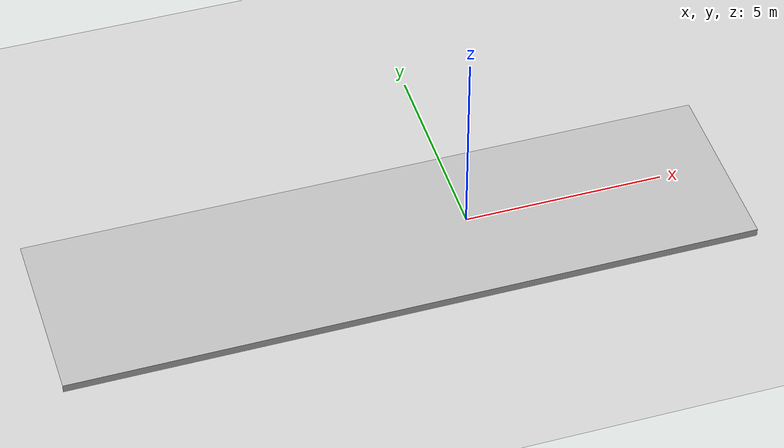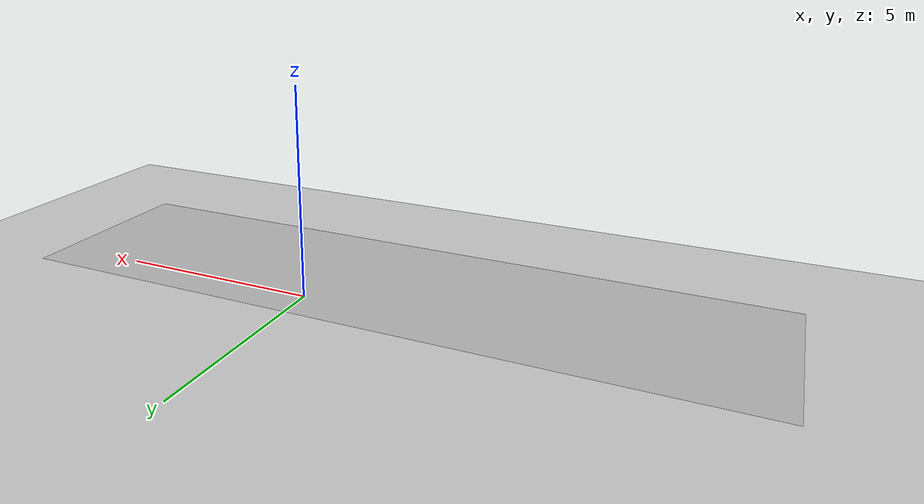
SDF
<?xml version="1.0"?>
<sdf version="1.4">
  <world name="default">

<scene>
  <sky>
    <clouds>
      <speed>12</speed>
    </clouds>
  </sky>
</scene>

    <include>
      <uri>model://ground_plane</uri>
    </include>
    <include>
      <uri>model://sun</uri>
    </include>

    <model name="road">
    <static>true</static>
	<link name="body">
	<inertial>
	 <pose>1 2 5  2 2 2</pose>
	 <mass>30.0</mass>
	  <inertia>
	   <ixx>0.5</ixx>
           <ixy>0.5</ixy>
           <ixz>0.5</ixz>
           <iyy>0.5</iyy>
           <iyz>0.5</iyz>
           <izz>0.5</izz>
          </inertia>
          </inertial>

        <collision name="visual">
	  <geometry>
            <mesh><uri>file://Bordstein.dae</uri></mesh>
          </geometry>

        </collision>

        <visual name="visual">
	  <geometry>
            <mesh><uri>file://Bordstein.dae</uri></mesh>
          </geometry>

        </visual>
      </link>
    </model>
  </world>
</sdf>
